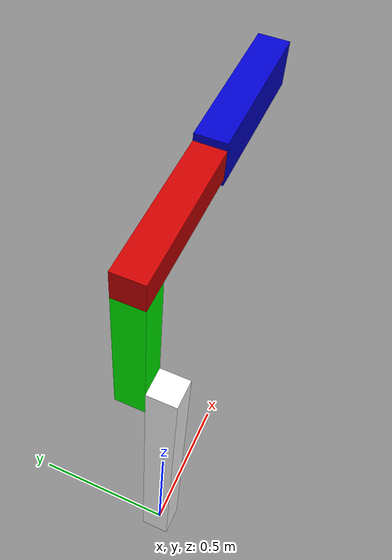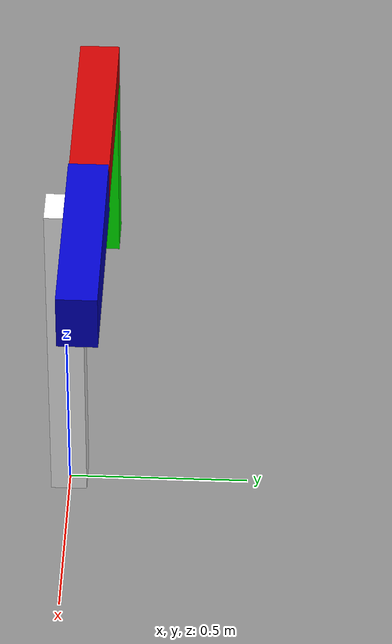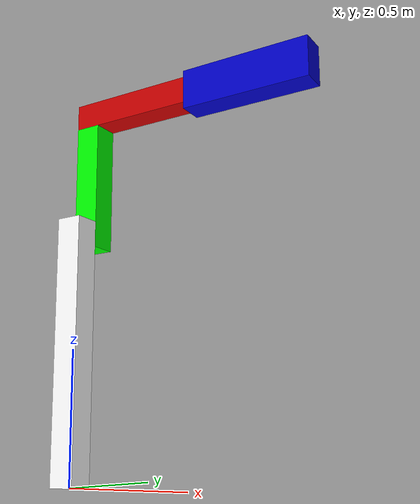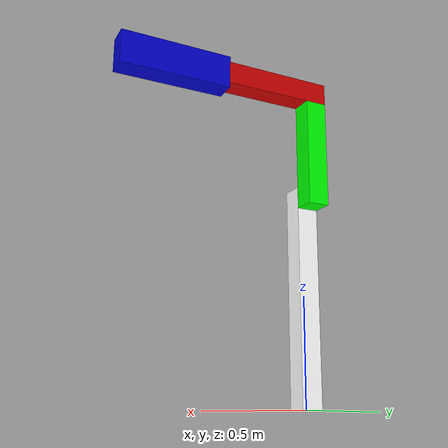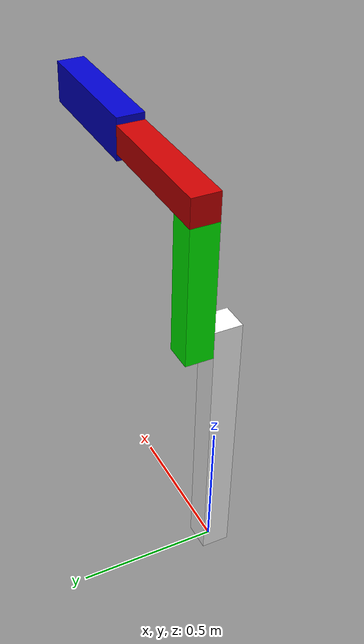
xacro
<?xml version="1.0"?>
<!-- Revolute-Revolute Manipulator -->

<robot xmlns:xacro="http://www.ros.org/wiki/xacro" name="arm_stand">

  <!-- Constants for robot dimensions -->
  <xacro:property name="PI" value="3.1415926535897931"/>
  <xacro:property name="mass" value="1" />
  <xacro:property name="width" value="0.1" />
  <xacro:property name="width3" value="0.15" />
  <xacro:property name="height1" value="1" />
  <xacro:property name="height2" value="0.5" />
  <xacro:property name="height3" value="0.5" />
  <xacro:property name="axle_offset" value="0.05" />
  <xacro:property name="damp" value="0.1" /> <!--0.7 damp and vel limit 0.5-->
  <xacro:property name="friction" value="0" />

  <!-- Default Inertial -->
  <xacro:macro name="default_inertial" params="z_value height mass width">
    <inertial>
      <origin xyz="0 0 ${z_value}" rpy="0 0 0"/>
      <mass value="${mass}"/>
      <inertia ixx="${mass / 12.0 * (width*width + height*height)}" ixy="0.0" ixz="0.0"
               iyy="${mass / 12.0 * (height*height + width*width)}" iyz="0.0"
               izz="${mass / 12.0 * (width*width + width*width)}" />
    </inertial>
  </xacro:macro>

  <!-- Import Rviz colors -->
  <xacro:include
      filename="$(find arm_dsc)/urdf/materials.urdf.xacro" />

  <!-- Include Gazebo tags -->
  <xacro:include filename="$(find arm_dsc)/gazebo/arm_stand_gazebo.urdf.xacro"/>

  <!--Arm Stand-->

  <link name="world"/>

  <joint name="virtual_joint" type="fixed">
    <parent link="world"/>
    <child link="base_link"/>
  </joint>

  <!-- Base Link -->
  <link name="base_link">
    <visual>
      <origin xyz="0 0 ${height1/2}" rpy="0 0 0" />
      <geometry>
        <box size="${width} ${width} ${height1}" />
      </geometry>
      <material name="white"/>
    </visual>
    <collision>
      <origin xyz="0 0 ${height1/2}" rpy="0 0 0" />
      <geometry>
        <box size="${width} ${width} ${height1}" />
      </geometry>
    </collision>
    <xacro:default_inertial z_value="${height1/2}" height="${height1}" mass="${mass}" width = "${width}"/>
  </link>

  <!-- Joint between Base Link and Middle Link -->
  <joint name="joint_base_mid" type="revolute">
    <parent link="base_link" />
    <child link="mid_link" />
    <origin xyz="0 ${width} ${height1 - axle_offset}" rpy="0 0 0"/>
    <axis xyz="0 1 0" />
    <dynamics damping="${damp}" friction = "${friction}" />
    <limit effort="1000.0" velocity="1" lower="-3.14" upper="3.14"/>
  </joint>

  <!-- Middle Link -->
  <link name="mid_link">
    <visual>
      <origin xyz="0 0 ${height2/2 - axle_offset}" rpy="0 0 0" />
      <geometry>
        <box size="${width} ${width} ${height2}" />
      </geometry>
      <material name="green"/>
    </visual>
    <collision>
      <origin xyz="0 0 ${height2/2 - axle_offset}" rpy="0 0 0" />
      <geometry>
        <box size="${width} ${width} ${height2}" />
      </geometry>
    </collision>
    <xacro:default_inertial z_value="${height2/2 - axle_offset}"
    height="${height2}" mass="${mass}" width = "${width}"/>
  </link>

  <!-- Joint between Middle Link and Top Link -->
  <joint name="joint_mid_top" type="revolute">
    <parent link="mid_link" />
    <child link="top_link" />
    <origin xyz="0 0 ${height2}" rpy="0 0 0"/>
    <axis xyz="0 0 1" />
    <dynamics damping="${damp}" friction = "${friction}" />
    <limit effort="1000.0" velocity="1" lower="-3.14" upper="3.14"/>
  </joint>

  <!-- Top Link -->
  <link name="top_link">
    <visual>
      <origin xyz="${height3/2 - axle_offset} 0 0" rpy="0 0 0" />
      <geometry>
        <box size="${height3} ${width} ${width}" />
      </geometry>
      <material name="red"/>
    </visual>
    <collision>
      <origin xyz="${height3/2 - axle_offset} 0 0" rpy="0 0 0" />
      <geometry>
        <box size="${height3} ${width} ${width}" />
      </geometry>
    </collision>
    <inertial>
      <origin xyz="${height3/2 - axle_offset} 0 0" rpy="0 0 0"/>
      <mass value="${mass}"/>
      <inertia ixx="${0.0833333 * mass * (0 + 0)}" ixy="0.0" ixz="0.0"
        iyy="${0.0833333 * mass * (height3)*(height3)}" iyz="0.0"
        izz="${0.0833333 * mass * (height3)*(height3)}" />
    </inertial>
  </link>

  <!-- Joint between Top Link and Forearm Link -->
  <joint name="joint_top_fore" type="revolute">
    <parent link="top_link" />
    <child link="fore_link" />
    <origin xyz="${height3 - axle_offset} 0 0" rpy="0 0 0"/>
    <axis xyz="1 0 0" />
    <dynamics damping="${damp}" friction = "${friction}" />
    <limit effort="1000.0" velocity="1" lower="-3.14" upper="3.14"/>
  </joint>

  <link name="fore_link">
    <visual>
      <origin xyz="${height3/2} 0 0" rpy="0 0 0" />
      <geometry>
        <box size="${height3} ${width} ${width3}" />
      </geometry>
      <material name="blue"/>
    </visual>
    <collision>
      <origin xyz="${height3/2} 0 0" rpy="0 0 0" />
      <geometry>
        <box size="${height3} ${width} ${width3}" />
      </geometry>
    </collision>
    <inertial>
      <origin xyz="${height3/2} 0 0" rpy="0 0 0"/>
      <mass value="${mass}"/>
      <inertia ixx="${0.0833333 * mass * (0 + 0)}" ixy="0.0" ixz="0.0"
        iyy="${0.0833333 * mass * (height3)*(height3)}" iyz="0.0"
        izz="${0.0833333 * mass * (height3)*(height3)}" />
    </inertial>
  </link>

  <!--Transmission-->

  <transmission name="trans_base_mid">
    <type>transmission_interface/SimpleTransmission</type>
    <joint name="joint_base_mid">
      <hardwareInterface>hardware_interface/EffortJointInterface</hardwareInterface>
    </joint>
    <actuator name="motor_base_mid">
      <hardwareInterface>hardware_interface/EffortJointInterface</hardwareInterface>
      <mechanicalReduction>1</mechanicalReduction>
    </actuator>
  </transmission>

  <transmission name="trans_mid_top">
    <type>transmission_interface/SimpleTransmission</type>
    <joint name="joint_mid_top">
      <hardwareInterface>hardware_interface/EffortJointInterface</hardwareInterface>
    </joint>
    <actuator name="motor_mid_top">
      <hardwareInterface>hardware_interface/EffortJointInterface</hardwareInterface>
      <mechanicalReduction>1</mechanicalReduction>
    </actuator>
  </transmission>

  <transmission name="trans_top_fore">
    <type>transmission_interface/SimpleTransmission</type>
    <joint name="joint_top_fore">
      <hardwareInterface>hardware_interface/EffortJointInterface</hardwareInterface>
    </joint>
    <actuator name="motor_top_fore">
      <hardwareInterface>hardware_interface/EffortJointInterface</hardwareInterface>
      <mechanicalReduction>1</mechanicalReduction>
    </actuator>
  </transmission>

</robot>

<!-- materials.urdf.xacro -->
<robot>
 <material name="black">
   <color rgba="0.0 0.0 0.0 1.0"/>
 </material>

 <material name="blue">
   <color rgba="0.0 0.0 0.8 1.0"/>
 </material>

 <material name="green">
  <color rgba="0.0 1.0 0.0 1.0"/>
 </material>

 <material name="grey">
  <color rgba="0.2 0.2 0.2 1.0"/>
 </material>

 <material name="orange">
  <color rgba="${255/255} ${108/255} ${10/255} 1.0"/>
 </material>

 <material name="brown">
  <color rgba="${222/255} ${207/255} ${195/255} 1.0"/>
 </material>

 <material name="red">
  <color rgba="0.8 0.0 0.0 1.0"/>
 </material>

 <material name="white">
  <color rgba="1.0 1.0 1.0 1.0"/>
 </material>

</robot>
